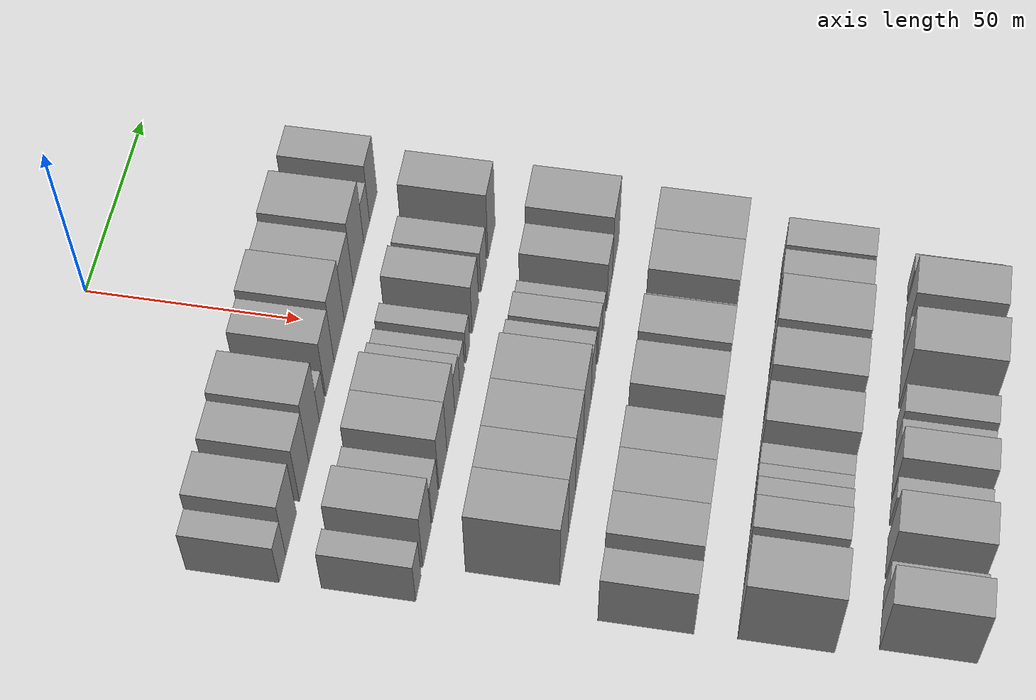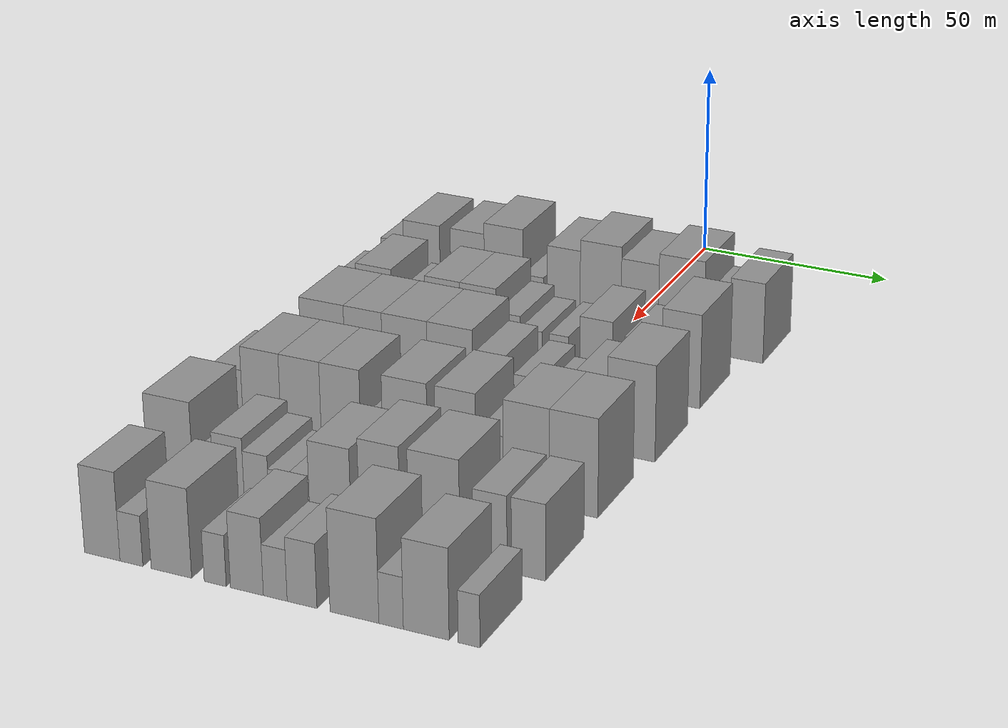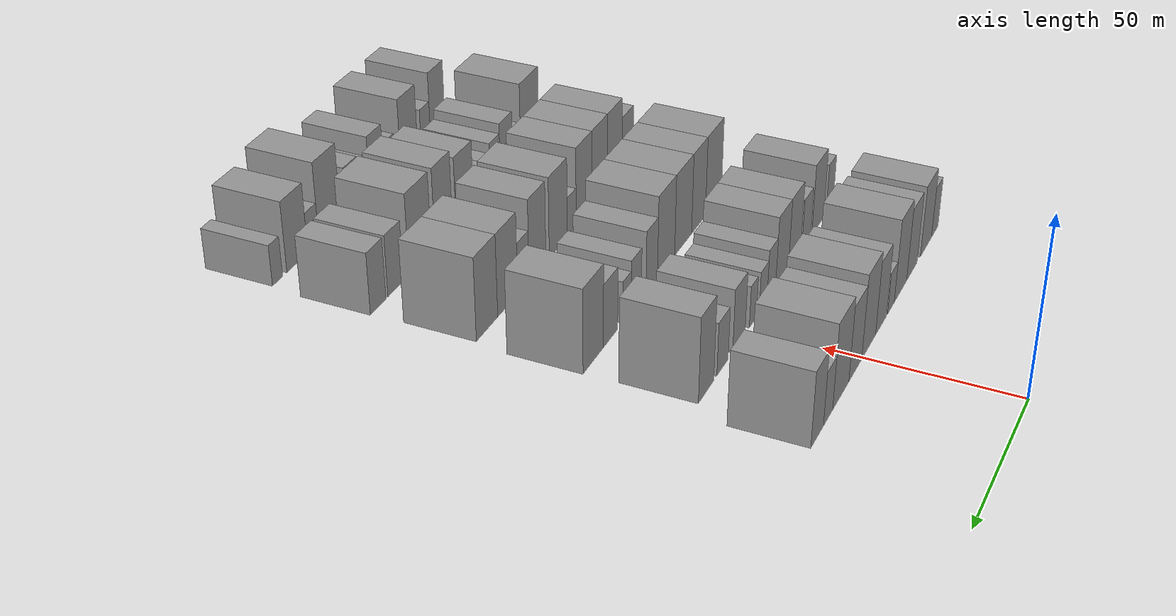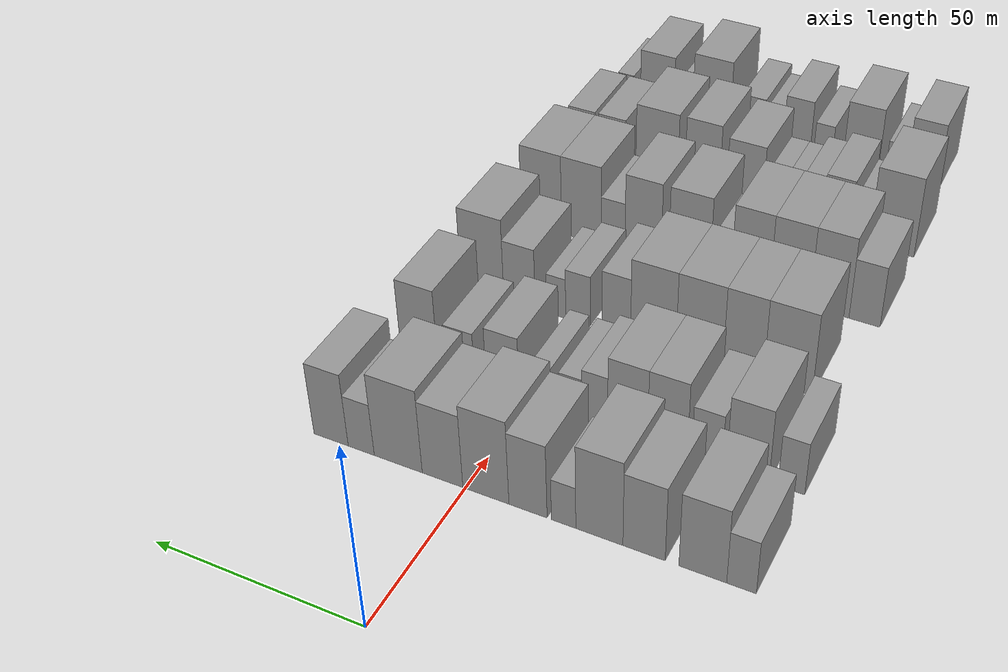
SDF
<sdf version="1.6">
 <world name="default">
  <model name="building_51">
   <static>1</static>
   <pose>50.0000 -62.4116 0 0.000000 0.000000 0.000000</pose>
   <link name="link">
    <pose>0 0 7.50 0 0 0</pose>
    <collision name="collision"><geometry><box><size>20.0000 6.3117 15.0000</size></box></geometry></collision>
    <visual name="visual">
     <cast_shadows>0</cast_shadows>
     <geometry><box><size>20.0000 6.3117 15.0000</size></box></geometry>
     <material>
      <script>
       <uri>model://grey_wall/materials/scripts</uri>
       <uri>model://grey_wall/materials/textures</uri>
       <name>vrc/grey_wall</name>
      </script>
     </material>
    </visual>
   </link>
  </model>
  <model name="building_52">
   <static>1</static>
   <pose>50.0000 -54.0903 0 0.000000 0.000000 0.000000</pose>
   <link name="link">
    <pose>0 0 10.50 0 0 0</pose>
    <collision name="collision"><geometry><box><size>20.0000 10.3308 21.0000</size></box></geometry></collision>
    <visual name="visual">
     <cast_shadows>0</cast_shadows>
     <geometry><box><size>20.0000 10.3308 21.0000</size></box></geometry>
     <material>
      <script>
       <uri>model://grey_wall/materials/scripts</uri>
       <uri>model://grey_wall/materials/textures</uri>
       <name>vrc/grey_wall</name>
      </script>
     </material>
    </visual>
   </link>
  </model>
  <model name="building_53">
   <static>1</static>
   <pose>50.0000 -41.2274 0 0.000000 0.000000 0.000000</pose>
   <link name="link">
    <pose>0 0 10.50 0 0 0</pose>
    <collision name="collision"><geometry><box><size>20.0000 9.3950 21.0000</size></box></geometry></collision>
    <visual name="visual">
     <cast_shadows>0</cast_shadows>
     <geometry><box><size>20.0000 9.3950 21.0000</size></box></geometry>
     <material>
      <script>
       <uri>model://grey_wall/materials/scripts</uri>
       <uri>model://grey_wall/materials/textures</uri>
       <name>vrc/grey_wall</name>
      </script>
     </material>
    </visual>
   </link>
  </model>
  <model name="building_54">
   <static>1</static>
   <pose>50.0000 -31.1987 0 0.000000 0.000000 0.000000</pose>
   <link name="link">
    <pose>0 0 12.00 0 0 0</pose>
    <collision name="collision"><geometry><box><size>20.0000 10.6625 24.0000</size></box></geometry></collision>
    <visual name="visual">
     <cast_shadows>0</cast_shadows>
     <geometry><box><size>20.0000 10.6625 24.0000</size></box></geometry>
     <material>
      <script>
       <uri>model://grey_wall/materials/scripts</uri>
       <uri>model://grey_wall/materials/textures</uri>
       <name>vrc/grey_wall</name>
      </script>
     </material>
    </visual>
   </link>
  </model>
  <model name="building_55">
   <static>1</static>
   <pose>50.0000 -23.0566 0 0.000000 0.000000 0.000000</pose>
   <link name="link">
    <pose>0 0 6.00 0 0 0</pose>
    <collision name="collision"><geometry><box><size>20.0000 5.6216 12.0000</size></box></geometry></collision>
    <visual name="visual">
     <cast_shadows>0</cast_shadows>
     <geometry><box><size>20.0000 5.6216 12.0000</size></box></geometry>
     <material>
      <script>
       <uri>model://grey_wall/materials/scripts</uri>
       <uri>model://grey_wall/materials/textures</uri>
       <name>vrc/grey_wall</name>
      </script>
     </material>
    </visual>
   </link>
  </model>
  <model name="building_56">
   <static>1</static>
   <pose>50.0000 -14.7755 0 0.000000 0.000000 0.000000</pose>
   <link name="link">
    <pose>0 0 10.50 0 0 0</pose>
    <collision name="collision"><geometry><box><size>20.0000 8.9406 21.0000</size></box></geometry></collision>
    <visual name="visual">
     <cast_shadows>0</cast_shadows>
     <geometry><box><size>20.0000 8.9406 21.0000</size></box></geometry>
     <material>
      <script>
       <uri>model://grey_wall/materials/scripts</uri>
       <uri>model://grey_wall/materials/textures</uri>
       <name>vrc/grey_wall</name>
      </script>
     </material>
    </visual>
   </link>
  </model>
  <model name="building_57">
   <static>1</static>
   <pose>50.0000 -4.7983 0 0.000000 0.000000 0.000000</pose>
   <link name="link">
    <pose>0 0 12.00 0 0 0</pose>
    <collision name="collision"><geometry><box><size>20.0000 11.0137 24.0000</size></box></geometry></collision>
    <visual name="visual">
     <cast_shadows>0</cast_shadows>
     <geometry><box><size>20.0000 11.0137 24.0000</size></box></geometry>
     <material>
      <script>
       <uri>model://grey_wall/materials/scripts</uri>
       <uri>model://grey_wall/materials/textures</uri>
       <name>vrc/grey_wall</name>
      </script>
     </material>
    </visual>
   </link>
  </model>
  <model name="building_58">
   <static>1</static>
   <pose>50.0000 5.6625 0 0.000000 0.000000 0.000000</pose>
   <link name="link">
    <pose>0 0 10.50 0 0 0</pose>
    <collision name="collision"><geometry><box><size>20.0000 9.9080 21.0000</size></box></geometry></collision>
    <visual name="visual">
     <cast_shadows>0</cast_shadows>
     <geometry><box><size>20.0000 9.9080 21.0000</size></box></geometry>
     <material>
      <script>
       <uri>model://grey_wall/materials/scripts</uri>
       <uri>model://grey_wall/materials/textures</uri>
       <name>vrc/grey_wall</name>
      </script>
     </material>
    </visual>
   </link>
  </model>
  <model name="building_59">
   <static>1</static>
   <pose>50.0000 16.5952 0 0.000000 0.000000 0.000000</pose>
   <link name="link">
    <pose>0 0 12.00 0 0 0</pose>
    <collision name="collision"><geometry><box><size>20.0000 11.9573 24.0000</size></box></geometry></collision>
    <visual name="visual">
     <cast_shadows>0</cast_shadows>
     <geometry><box><size>20.0000 11.9573 24.0000</size></box></geometry>
     <material>
      <script>
       <uri>model://grey_wall/materials/scripts</uri>
       <uri>model://grey_wall/materials/textures</uri>
       <name>vrc/grey_wall</name>
      </script>
     </material>
    </visual>
   </link>
  </model>
  <model name="building_60">
   <static>1</static>
   <pose>50.0000 25.8689 0 0.000000 0.000000 0.000000</pose>
   <link name="link">
    <pose>0 0 7.50 0 0 0</pose>
    <collision name="collision"><geometry><box><size>20.0000 6.5901 15.0000</size></box></geometry></collision>
    <visual name="visual">
     <cast_shadows>0</cast_shadows>
     <geometry><box><size>20.0000 6.5901 15.0000</size></box></geometry>
     <material>
      <script>
       <uri>model://grey_wall/materials/scripts</uri>
       <uri>model://grey_wall/materials/textures</uri>
       <name>vrc/grey_wall</name>
      </script>
     </material>
    </visual>
   </link>
  </model>
  <model name="building_61">
   <static>1</static>
   <pose>50.0000 33.5676 0 0.000000 0.000000 0.000000</pose>
   <link name="link">
    <pose>0 0 10.50 0 0 0</pose>
    <collision name="collision"><geometry><box><size>20.0000 8.8073 21.0000</size></box></geometry></collision>
    <visual name="visual">
     <cast_shadows>0</cast_shadows>
     <geometry><box><size>20.0000 8.8073 21.0000</size></box></geometry>
     <material>
      <script>
       <uri>model://grey_wall/materials/scripts</uri>
       <uri>model://grey_wall/materials/textures</uri>
       <name>vrc/grey_wall</name>
      </script>
     </material>
    </visual>
   </link>
  </model>
  <model name="building_163">
   <static>1</static>
   <pose>79.0000 -62.3945 0 0.000000 0.000000 0.000000</pose>
   <link name="link">
    <pose>0 0 7.50 0 0 0</pose>
    <collision name="collision"><geometry><box><size>20.0000 6.0186 15.0000</size></box></geometry></collision>
    <visual name="visual">
     <cast_shadows>0</cast_shadows>
     <geometry><box><size>20.0000 6.0186 15.0000</size></box></geometry>
     <material>
      <script>
       <uri>model://grey_wall/materials/scripts</uri>
       <uri>model://grey_wall/materials/textures</uri>
       <name>vrc/grey_wall</name>
      </script>
     </material>
    </visual>
   </link>
  </model>
  <model name="building_164">
   <static>1</static>
   <pose>79.0000 -52.5461 0 0.000000 0.000000 0.000000</pose>
   <link name="link">
    <pose>0 0 10.50 0 0 0</pose>
    <collision name="collision"><geometry><box><size>20.0000 9.6782 21.0000</size></box></geometry></collision>
    <visual name="visual">
     <cast_shadows>0</cast_shadows>
     <geometry><box><size>20.0000 9.6782 21.0000</size></box></geometry>
     <material>
      <script>
       <uri>model://grey_wall/materials/scripts</uri>
       <uri>model://grey_wall/materials/textures</uri>
       <name>vrc/grey_wall</name>
      </script>
     </material>
    </visual>
   </link>
  </model>
  <model name="building_165">
   <static>1</static>
   <pose>79.0000 -43.1634 0 0.000000 0.000000 0.000000</pose>
   <link name="link">
    <pose>0 0 7.50 0 0 0</pose>
    <collision name="collision"><geometry><box><size>20.0000 7.0872 15.0000</size></box></geometry></collision>
    <visual name="visual">
     <cast_shadows>0</cast_shadows>
     <geometry><box><size>20.0000 7.0872 15.0000</size></box></geometry>
     <material>
      <script>
       <uri>model://grey_wall/materials/scripts</uri>
       <uri>model://grey_wall/materials/textures</uri>
       <name>vrc/grey_wall</name>
      </script>
     </material>
    </visual>
   </link>
  </model>
  <model name="building_166">
   <static>1</static>
   <pose>79.0000 -33.9154 0 0.000000 0.000000 0.000000</pose>
   <link name="link">
    <pose>0 0 10.50 0 0 0</pose>
    <collision name="collision"><geometry><box><size>20.0000 9.4089 21.0000</size></box></geometry></collision>
    <visual name="visual">
     <cast_shadows>0</cast_shadows>
     <geometry><box><size>20.0000 9.4089 21.0000</size></box></geometry>
     <material>
      <script>
       <uri>model://grey_wall/materials/scripts</uri>
       <uri>model://grey_wall/materials/textures</uri>
       <name>vrc/grey_wall</name>
      </script>
     </material>
    </visual>
   </link>
  </model>
  <model name="building_167">
   <static>1</static>
   <pose>79.0000 -24.3999 0 0.000000 0.000000 0.000000</pose>
   <link name="link">
    <pose>0 0 10.50 0 0 0</pose>
    <collision name="collision"><geometry><box><size>20.0000 9.6222 21.0000</size></box></geometry></collision>
    <visual name="visual">
     <cast_shadows>0</cast_shadows>
     <geometry><box><size>20.0000 9.6222 21.0000</size></box></geometry>
     <material>
      <script>
       <uri>model://grey_wall/materials/scripts</uri>
       <uri>model://grey_wall/materials/textures</uri>
       <name>vrc/grey_wall</name>
      </script>
     </material>
    </visual>
   </link>
  </model>
  <model name="building_168">
   <static>1</static>
   <pose>79.0000 -16.4338 0 0.000000 0.000000 0.000000</pose>
   <link name="link">
    <pose>0 0 7.50 0 0 0</pose>
    <collision name="collision"><geometry><box><size>20.0000 6.3099 15.0000</size></box></geometry></collision>
    <visual name="visual">
     <cast_shadows>0</cast_shadows>
     <geometry><box><size>20.0000 6.3099 15.0000</size></box></geometry>
     <material>
      <script>
       <uri>model://grey_wall/materials/scripts</uri>
       <uri>model://grey_wall/materials/textures</uri>
       <name>vrc/grey_wall</name>
      </script>
     </material>
    </visual>
   </link>
  </model>
  <model name="building_169">
   <static>1</static>
   <pose>79.0000 -10.4634 0 0.000000 0.000000 0.000000</pose>
   <link name="link">
    <pose>0 0 6.00 0 0 0</pose>
    <collision name="collision"><geometry><box><size>20.0000 5.6307 12.0000</size></box></geometry></collision>
    <visual name="visual">
     <cast_shadows>0</cast_shadows>
     <geometry><box><size>20.0000 5.6307 12.0000</size></box></geometry>
     <material>
      <script>
       <uri>model://grey_wall/materials/scripts</uri>
       <uri>model://grey_wall/materials/textures</uri>
       <name>vrc/grey_wall</name>
      </script>
     </material>
    </visual>
   </link>
  </model>
  <model name="building_170">
   <static>1</static>
   <pose>79.0000 -3.1844 0 0.000000 0.000000 0.000000</pose>
   <link name="link">
    <pose>0 0 6.00 0 0 0</pose>
    <collision name="collision"><geometry><box><size>20.0000 4.9274 12.0000</size></box></geometry></collision>
    <visual name="visual">
     <cast_shadows>0</cast_shadows>
     <geometry><box><size>20.0000 4.9274 12.0000</size></box></geometry>
     <material>
      <script>
       <uri>model://grey_wall/materials/scripts</uri>
       <uri>model://grey_wall/materials/textures</uri>
       <name>vrc/grey_wall</name>
      </script>
     </material>
    </visual>
   </link>
  </model>
  <model name="building_171">
   <static>1</static>
   <pose>79.0000 6.4791 0 0.000000 0.000000 0.000000</pose>
   <link name="link">
    <pose>0 0 9.00 0 0 0</pose>
    <collision name="collision"><geometry><box><size>20.0000 8.3995 18.0000</size></box></geometry></collision>
    <visual name="visual">
     <cast_shadows>0</cast_shadows>
     <geometry><box><size>20.0000 8.3995 18.0000</size></box></geometry>
     <material>
      <script>
       <uri>model://grey_wall/materials/scripts</uri>
       <uri>model://grey_wall/materials/textures</uri>
       <name>vrc/grey_wall</name>
      </script>
     </material>
    </visual>
   </link>
  </model>
  <model name="building_172">
   <static>1</static>
   <pose>79.0000 17.4072 0 0.000000 0.000000 0.000000</pose>
   <link name="link">
    <pose>0 0 7.50 0 0 0</pose>
    <collision name="collision"><geometry><box><size>20.0000 7.4567 15.0000</size></box></geometry></collision>
    <visual name="visual">
     <cast_shadows>0</cast_shadows>
     <geometry><box><size>20.0000 7.4567 15.0000</size></box></geometry>
     <material>
      <script>
       <uri>model://grey_wall/materials/scripts</uri>
       <uri>model://grey_wall/materials/textures</uri>
       <name>vrc/grey_wall</name>
      </script>
     </material>
    </visual>
   </link>
  </model>
  <model name="building_173">
   <static>1</static>
   <pose>79.0000 28.0051 0 0.000000 0.000000 0.000000</pose>
   <link name="link">
    <pose>0 0 12.00 0 0 0</pose>
    <collision name="collision"><geometry><box><size>20.0000 9.7390 24.0000</size></box></geometry></collision>
    <visual name="visual">
     <cast_shadows>0</cast_shadows>
     <geometry><box><size>20.0000 9.7390 24.0000</size></box></geometry>
     <material>
      <script>
       <uri>model://grey_wall/materials/scripts</uri>
       <uri>model://grey_wall/materials/textures</uri>
       <name>vrc/grey_wall</name>
      </script>
     </material>
    </visual>
   </link>
  </model>
  <model name="building_278">
   <static>1</static>
   <pose>108.0000 -51.0551 0 0.000000 0.000000 0.000000</pose>
   <link name="link">
    <pose>0 0 12.00 0 0 0</pose>
    <collision name="collision"><geometry><box><size>20.0000 11.7241 24.0000</size></box></geometry></collision>
    <visual name="visual">
     <cast_shadows>0</cast_shadows>
     <geometry><box><size>20.0000 11.7241 24.0000</size></box></geometry>
     <material>
      <script>
       <uri>model://grey_wall/materials/scripts</uri>
       <uri>model://grey_wall/materials/textures</uri>
       <name>vrc/grey_wall</name>
      </script>
     </material>
    </visual>
   </link>
  </model>
  <model name="building_279">
   <static>1</static>
   <pose>108.0000 -40.2306 0 0.000000 0.000000 0.000000</pose>
   <link name="link">
    <pose>0 0 12.00 0 0 0</pose>
    <collision name="collision"><geometry><box><size>20.0000 9.9248 24.0000</size></box></geometry></collision>
    <visual name="visual">
     <cast_shadows>0</cast_shadows>
     <geometry><box><size>20.0000 9.9248 24.0000</size></box></geometry>
     <material>
      <script>
       <uri>model://grey_wall/materials/scripts</uri>
       <uri>model://grey_wall/materials/textures</uri>
       <name>vrc/grey_wall</name>
      </script>
     </material>
    </visual>
   </link>
  </model>
  <model name="building_280">
   <static>1</static>
   <pose>108.0000 -29.4153 0 0.000000 0.000000 0.000000</pose>
   <link name="link">
    <pose>0 0 12.00 0 0 0</pose>
    <collision name="collision"><geometry><box><size>20.0000 11.7057 24.0000</size></box></geometry></collision>
    <visual name="visual">
     <cast_shadows>0</cast_shadows>
     <geometry><box><size>20.0000 11.7057 24.0000</size></box></geometry>
     <material>
      <script>
       <uri>model://grey_wall/materials/scripts</uri>
       <uri>model://grey_wall/materials/textures</uri>
       <name>vrc/grey_wall</name>
      </script>
     </material>
    </visual>
   </link>
  </model>
  <model name="building_281">
   <static>1</static>
   <pose>108.0000 -17.7863 0 0.000000 0.000000 0.000000</pose>
   <link name="link">
    <pose>0 0 12.00 0 0 0</pose>
    <collision name="collision"><geometry><box><size>20.0000 11.5524 24.0000</size></box></geometry></collision>
    <visual name="visual">
     <cast_shadows>0</cast_shadows>
     <geometry><box><size>20.0000 11.5524 24.0000</size></box></geometry>
     <material>
      <script>
       <uri>model://grey_wall/materials/scripts</uri>
       <uri>model://grey_wall/materials/textures</uri>
       <name>vrc/grey_wall</name>
      </script>
     </material>
    </visual>
   </link>
  </model>
  <model name="building_282">
   <static>1</static>
   <pose>108.0000 -8.2903 0 0.000000 0.000000 0.000000</pose>
   <link name="link">
    <pose>0 0 9.00 0 0 0</pose>
    <collision name="collision"><geometry><box><size>20.0000 7.4397 18.0000</size></box></geometry></collision>
    <visual name="visual">
     <cast_shadows>0</cast_shadows>
     <geometry><box><size>20.0000 7.4397 18.0000</size></box></geometry>
     <material>
      <script>
       <uri>model://grey_wall/materials/scripts</uri>
       <uri>model://grey_wall/materials/textures</uri>
       <name>vrc/grey_wall</name>
      </script>
     </material>
    </visual>
   </link>
  </model>
  <model name="building_283">
   <static>1</static>
   <pose>108.0000 1.6561 0 0.000000 0.000000 0.000000</pose>
   <link name="link">
    <pose>0 0 7.50 0 0 0</pose>
    <collision name="collision"><geometry><box><size>20.0000 6.4531 15.0000</size></box></geometry></collision>
    <visual name="visual">
     <cast_shadows>0</cast_shadows>
     <geometry><box><size>20.0000 6.4531 15.0000</size></box></geometry>
     <material>
      <script>
       <uri>model://grey_wall/materials/scripts</uri>
       <uri>model://grey_wall/materials/textures</uri>
       <name>vrc/grey_wall</name>
      </script>
     </material>
    </visual>
   </link>
  </model>
  <model name="building_284">
   <static>1</static>
   <pose>108.0000 7.4560 0 0.000000 0.000000 0.000000</pose>
   <link name="link">
    <pose>0 0 6.00 0 0 0</pose>
    <collision name="collision"><geometry><box><size>20.0000 5.1467 12.0000</size></box></geometry></collision>
    <visual name="visual">
     <cast_shadows>0</cast_shadows>
     <geometry><box><size>20.0000 5.1467 12.0000</size></box></geometry>
     <material>
      <script>
       <uri>model://grey_wall/materials/scripts</uri>
       <uri>model://grey_wall/materials/textures</uri>
       <name>vrc/grey_wall</name>
      </script>
     </material>
    </visual>
   </link>
  </model>
  <model name="building_285">
   <static>1</static>
   <pose>108.0000 17.2810 0 0.000000 0.000000 0.000000</pose>
   <link name="link">
    <pose>0 0 9.00 0 0 0</pose>
    <collision name="collision"><geometry><box><size>20.0000 8.5032 18.0000</size></box></geometry></collision>
    <visual name="visual">
     <cast_shadows>0</cast_shadows>
     <geometry><box><size>20.0000 8.5032 18.0000</size></box></geometry>
     <material>
      <script>
       <uri>model://grey_wall/materials/scripts</uri>
       <uri>model://grey_wall/materials/textures</uri>
       <name>vrc/grey_wall</name>
      </script>
     </material>
    </visual>
   </link>
  </model>
  <model name="building_286">
   <static>1</static>
   <pose>108.0000 27.4141 0 0.000000 0.000000 0.000000</pose>
   <link name="link">
    <pose>0 0 12.00 0 0 0</pose>
    <collision name="collision"><geometry><box><size>20.0000 11.7630 24.0000</size></box></geometry></collision>
    <visual name="visual">
     <cast_shadows>0</cast_shadows>
     <geometry><box><size>20.0000 11.7630 24.0000</size></box></geometry>
     <material>
      <script>
       <uri>model://grey_wall/materials/scripts</uri>
       <uri>model://grey_wall/materials/textures</uri>
       <name>vrc/grey_wall</name>
      </script>
     </material>
    </visual>
   </link>
  </model>
  <model name="building_385">
   <static>1</static>
   <pose>137.0000 -59.8821 0 0.000000 0.000000 0.000000</pose>
   <link name="link">
    <pose>0 0 9.00 0 0 0</pose>
    <collision name="collision"><geometry><box><size>20.0000 7.7068 18.0000</size></box></geometry></collision>
    <visual name="visual">
     <cast_shadows>0</cast_shadows>
     <geometry><box><size>20.0000 7.7068 18.0000</size></box></geometry>
     <material>
      <script>
       <uri>model://grey_wall/materials/scripts</uri>
       <uri>model://grey_wall/materials/textures</uri>
       <name>vrc/grey_wall</name>
      </script>
     </material>
    </visual>
   </link>
  </model>
  <model name="building_386">
   <static>1</static>
   <pose>137.0000 -51.0904 0 0.000000 0.000000 0.000000</pose>
   <link name="link">
    <pose>0 0 12.00 0 0 0</pose>
    <collision name="collision"><geometry><box><size>20.0000 9.8766 24.0000</size></box></geometry></collision>
    <visual name="visual">
     <cast_shadows>0</cast_shadows>
     <geometry><box><size>20.0000 9.8766 24.0000</size></box></geometry>
     <material>
      <script>
       <uri>model://grey_wall/materials/scripts</uri>
       <uri>model://grey_wall/materials/textures</uri>
       <name>vrc/grey_wall</name>
      </script>
     </material>
    </visual>
   </link>
  </model>
  <model name="building_387">
   <static>1</static>
   <pose>137.0000 -40.9889 0 0.000000 0.000000 0.000000</pose>
   <link name="link">
    <pose>0 0 12.00 0 0 0</pose>
    <collision name="collision"><geometry><box><size>20.0000 10.3264 24.0000</size></box></geometry></collision>
    <visual name="visual">
     <cast_shadows>0</cast_shadows>
     <geometry><box><size>20.0000 10.3264 24.0000</size></box></geometry>
     <material>
      <script>
       <uri>model://grey_wall/materials/scripts</uri>
       <uri>model://grey_wall/materials/textures</uri>
       <name>vrc/grey_wall</name>
      </script>
     </material>
    </visual>
   </link>
  </model>
  <model name="building_388">
   <static>1</static>
   <pose>137.0000 -30.7949 0 0.000000 0.000000 0.000000</pose>
   <link name="link">
    <pose>0 0 12.00 0 0 0</pose>
    <collision name="collision"><geometry><box><size>20.0000 10.0615 24.0000</size></box></geometry></collision>
    <visual name="visual">
     <cast_shadows>0</cast_shadows>
     <geometry><box><size>20.0000 10.0615 24.0000</size></box></geometry>
     <material>
      <script>
       <uri>model://grey_wall/materials/scripts</uri>
       <uri>model://grey_wall/materials/textures</uri>
       <name>vrc/grey_wall</name>
      </script>
     </material>
    </visual>
   </link>
  </model>
  <model name="building_389">
   <static>1</static>
   <pose>137.0000 -23.0098 0 0.000000 0.000000 0.000000</pose>
   <link name="link">
    <pose>0 0 6.00 0 0 0</pose>
    <collision name="collision"><geometry><box><size>20.0000 5.5087 12.0000</size></box></geometry></collision>
    <visual name="visual">
     <cast_shadows>0</cast_shadows>
     <geometry><box><size>20.0000 5.5087 12.0000</size></box></geometry>
     <material>
      <script>
       <uri>model://grey_wall/materials/scripts</uri>
       <uri>model://grey_wall/materials/textures</uri>
       <name>vrc/grey_wall</name>
      </script>
     </material>
    </visual>
   </link>
  </model>
  <model name="building_390">
   <static>1</static>
   <pose>137.0000 -14.7301 0 0.000000 0.000000 0.000000</pose>
   <link name="link">
    <pose>0 0 12.00 0 0 0</pose>
    <collision name="collision"><geometry><box><size>20.0000 11.0506 24.0000</size></box></geometry></collision>
    <visual name="visual">
     <cast_shadows>0</cast_shadows>
     <geometry><box><size>20.0000 11.0506 24.0000</size></box></geometry>
     <material>
      <script>
       <uri>model://grey_wall/materials/scripts</uri>
       <uri>model://grey_wall/materials/textures</uri>
       <name>vrc/grey_wall</name>
      </script>
     </material>
    </visual>
   </link>
  </model>
  <model name="building_391">
   <static>1</static>
   <pose>137.0000 -2.2840 0 0.000000 0.000000 0.000000</pose>
   <link name="link">
    <pose>0 0 12.00 0 0 0</pose>
    <collision name="collision"><geometry><box><size>20.0000 9.8416 24.0000</size></box></geometry></collision>
    <visual name="visual">
     <cast_shadows>0</cast_shadows>
     <geometry><box><size>20.0000 9.8416 24.0000</size></box></geometry>
     <material>
      <script>
       <uri>model://grey_wall/materials/scripts</uri>
       <uri>model://grey_wall/materials/textures</uri>
       <name>vrc/grey_wall</name>
      </script>
     </material>
    </visual>
   </link>
  </model>
  <model name="building_392">
   <static>1</static>
   <pose>137.0000 5.9213 0 0.000000 0.000000 0.000000</pose>
   <link name="link">
    <pose>0 0 7.50 0 0 0</pose>
    <collision name="collision"><geometry><box><size>20.0000 6.5691 15.0000</size></box></geometry></collision>
    <visual name="visual">
     <cast_shadows>0</cast_shadows>
     <geometry><box><size>20.0000 6.5691 15.0000</size></box></geometry>
     <material>
      <script>
       <uri>model://grey_wall/materials/scripts</uri>
       <uri>model://grey_wall/materials/textures</uri>
       <name>vrc/grey_wall</name>
      </script>
     </material>
    </visual>
   </link>
  </model>
  <model name="building_393">
   <static>1</static>
   <pose>137.0000 14.7529 0 0.000000 0.000000 0.000000</pose>
   <link name="link">
    <pose>0 0 12.00 0 0 0</pose>
    <collision name="collision"><geometry><box><size>20.0000 11.0941 24.0000</size></box></geometry></collision>
    <visual name="visual">
     <cast_shadows>0</cast_shadows>
     <geometry><box><size>20.0000 11.0941 24.0000</size></box></geometry>
     <material>
      <script>
       <uri>model://grey_wall/materials/scripts</uri>
       <uri>model://grey_wall/materials/textures</uri>
       <name>vrc/grey_wall</name>
      </script>
     </material>
    </visual>
   </link>
  </model>
  <model name="building_394">
   <static>1</static>
   <pose>137.0000 26.0189 0 0.000000 0.000000 0.000000</pose>
   <link name="link">
    <pose>0 0 12.00 0 0 0</pose>
    <collision name="collision"><geometry><box><size>20.0000 11.4378 24.0000</size></box></geometry></collision>
    <visual name="visual">
     <cast_shadows>0</cast_shadows>
     <geometry><box><size>20.0000 11.4378 24.0000</size></box></geometry>
     <material>
      <script>
       <uri>model://grey_wall/materials/scripts</uri>
       <uri>model://grey_wall/materials/textures</uri>
       <name>vrc/grey_wall</name>
      </script>
     </material>
    </visual>
   </link>
  </model>
  <model name="building_498">
   <static>1</static>
   <pose>166.0000 -57.5753 0 0.000000 0.000000 0.000000</pose>
   <link name="link">
    <pose>0 0 12.00 0 0 0</pose>
    <collision name="collision"><geometry><box><size>20.0000 11.6650 24.0000</size></box></geometry></collision>
    <visual name="visual">
     <cast_shadows>0</cast_shadows>
     <geometry><box><size>20.0000 11.6650 24.0000</size></box></geometry>
     <material>
      <script>
       <uri>model://grey_wall/materials/scripts</uri>
       <uri>model://grey_wall/materials/textures</uri>
       <name>vrc/grey_wall</name>
      </script>
     </material>
    </visual>
   </link>
  </model>
  <model name="building_499">
   <static>1</static>
   <pose>166.0000 -49.2189 0 0.000000 0.000000 0.000000</pose>
   <link name="link">
    <pose>0 0 6.00 0 0 0</pose>
    <collision name="collision"><geometry><box><size>20.0000 5.0479 12.0000</size></box></geometry></collision>
    <visual name="visual">
     <cast_shadows>0</cast_shadows>
     <geometry><box><size>20.0000 5.0479 12.0000</size></box></geometry>
     <material>
      <script>
       <uri>model://grey_wall/materials/scripts</uri>
       <uri>model://grey_wall/materials/textures</uri>
       <name>vrc/grey_wall</name>
      </script>
     </material>
    </visual>
   </link>
  </model>
  <model name="building_500">
   <static>1</static>
   <pose>166.0000 -42.8873 0 0.000000 0.000000 0.000000</pose>
   <link name="link">
    <pose>0 0 9.00 0 0 0</pose>
    <collision name="collision"><geometry><box><size>20.0000 7.6154 18.0000</size></box></geometry></collision>
    <visual name="visual">
     <cast_shadows>0</cast_shadows>
     <geometry><box><size>20.0000 7.6154 18.0000</size></box></geometry>
     <material>
      <script>
       <uri>model://grey_wall/materials/scripts</uri>
       <uri>model://grey_wall/materials/textures</uri>
       <name>vrc/grey_wall</name>
      </script>
     </material>
    </visual>
   </link>
  </model>
  <model name="building_501">
   <static>1</static>
   <pose>166.0000 -36.0193 0 0.000000 0.000000 0.000000</pose>
   <link name="link">
    <pose>0 0 7.50 0 0 0</pose>
    <collision name="collision"><geometry><box><size>20.0000 6.1205 15.0000</size></box></geometry></collision>
    <visual name="visual">
     <cast_shadows>0</cast_shadows>
     <geometry><box><size>20.0000 6.1205 15.0000</size></box></geometry>
     <material>
      <script>
       <uri>model://grey_wall/materials/scripts</uri>
       <uri>model://grey_wall/materials/textures</uri>
       <name>vrc/grey_wall</name>
      </script>
     </material>
    </visual>
   </link>
  </model>
  <model name="building_502">
   <static>1</static>
   <pose>166.0000 -30.4829 0 0.000000 0.000000 0.000000</pose>
   <link name="link">
    <pose>0 0 6.00 0 0 0</pose>
    <collision name="collision"><geometry><box><size>20.0000 4.9523 12.0000</size></box></geometry></collision>
    <visual name="visual">
     <cast_shadows>0</cast_shadows>
     <geometry><box><size>20.0000 4.9523 12.0000</size></box></geometry>
     <material>
      <script>
       <uri>model://grey_wall/materials/scripts</uri>
       <uri>model://grey_wall/materials/textures</uri>
       <name>vrc/grey_wall</name>
      </script>
     </material>
    </visual>
   </link>
  </model>
  <model name="building_503">
   <static>1</static>
   <pose>166.0000 -25.4910 0 0.000000 0.000000 0.000000</pose>
   <link name="link">
    <pose>0 0 6.00 0 0 0</pose>
    <collision name="collision"><geometry><box><size>20.0000 5.0314 12.0000</size></box></geometry></collision>
    <visual name="visual">
     <cast_shadows>0</cast_shadows>
     <geometry><box><size>20.0000 5.0314 12.0000</size></box></geometry>
     <material>
      <script>
       <uri>model://grey_wall/materials/scripts</uri>
       <uri>model://grey_wall/materials/textures</uri>
       <name>vrc/grey_wall</name>
      </script>
     </material>
    </visual>
   </link>
  </model>
  <model name="building_504">
   <static>1</static>
   <pose>166.0000 -17.9669 0 0.000000 0.000000 0.000000</pose>
   <link name="link">
    <pose>0 0 10.50 0 0 0</pose>
    <collision name="collision"><geometry><box><size>20.0000 10.0170 21.0000</size></box></geometry></collision>
    <visual name="visual">
     <cast_shadows>0</cast_shadows>
     <geometry><box><size>20.0000 10.0170 21.0000</size></box></geometry>
     <material>
      <script>
       <uri>model://grey_wall/materials/scripts</uri>
       <uri>model://grey_wall/materials/textures</uri>
       <name>vrc/grey_wall</name>
      </script>
     </material>
    </visual>
   </link>
  </model>
  <model name="building_505">
   <static>1</static>
   <pose>166.0000 -6.1053 0 0.000000 0.000000 0.000000</pose>
   <link name="link">
    <pose>0 0 12.00 0 0 0</pose>
    <collision name="collision"><geometry><box><size>20.0000 9.7061 24.0000</size></box></geometry></collision>
    <visual name="visual">
     <cast_shadows>0</cast_shadows>
     <geometry><box><size>20.0000 9.7061 24.0000</size></box></geometry>
     <material>
      <script>
       <uri>model://grey_wall/materials/scripts</uri>
       <uri>model://grey_wall/materials/textures</uri>
       <name>vrc/grey_wall</name>
      </script>
     </material>
    </visual>
   </link>
  </model>
  <model name="building_506">
   <static>1</static>
   <pose>166.0000 6.7424 0 0.000000 0.000000 0.000000</pose>
   <link name="link">
    <pose>0 0 12.00 0 0 0</pose>
    <collision name="collision"><geometry><box><size>20.0000 11.9894 24.0000</size></box></geometry></collision>
    <visual name="visual">
     <cast_shadows>0</cast_shadows>
     <geometry><box><size>20.0000 11.9894 24.0000</size></box></geometry>
     <material>
      <script>
       <uri>model://grey_wall/materials/scripts</uri>
       <uri>model://grey_wall/materials/textures</uri>
       <name>vrc/grey_wall</name>
      </script>
     </material>
    </visual>
   </link>
  </model>
  <model name="building_507">
   <static>1</static>
   <pose>166.0000 19.6723 0 0.000000 0.000000 0.000000</pose>
   <link name="link">
    <pose>0 0 9.00 0 0 0</pose>
    <collision name="collision"><geometry><box><size>20.0000 7.8706 18.0000</size></box></geometry></collision>
    <visual name="visual">
     <cast_shadows>0</cast_shadows>
     <geometry><box><size>20.0000 7.8706 18.0000</size></box></geometry>
     <material>
      <script>
       <uri>model://grey_wall/materials/scripts</uri>
       <uri>model://grey_wall/materials/textures</uri>
       <name>vrc/grey_wall</name>
      </script>
     </material>
    </visual>
   </link>
  </model>
  <model name="building_508">
   <static>1</static>
   <pose>166.0000 28.4803 0 0.000000 0.000000 0.000000</pose>
   <link name="link">
    <pose>0 0 9.00 0 0 0</pose>
    <collision name="collision"><geometry><box><size>20.0000 7.7455 18.0000</size></box></geometry></collision>
    <visual name="visual">
     <cast_shadows>0</cast_shadows>
     <geometry><box><size>20.0000 7.7455 18.0000</size></box></geometry>
     <material>
      <script>
       <uri>model://grey_wall/materials/scripts</uri>
       <uri>model://grey_wall/materials/textures</uri>
       <name>vrc/grey_wall</name>
      </script>
     </material>
    </visual>
   </link>
  </model>
  <model name="building_605">
   <static>1</static>
   <pose>195.0000 -56.8257 0 0.000000 0.000000 0.000000</pose>
   <link name="link">
    <pose>0 0 10.50 0 0 0</pose>
    <collision name="collision"><geometry><box><size>20.0000 8.7686 21.0000</size></box></geometry></collision>
    <visual name="visual">
     <cast_shadows>0</cast_shadows>
     <geometry><box><size>20.0000 8.7686 21.0000</size></box></geometry>
     <material>
      <script>
       <uri>model://grey_wall/materials/scripts</uri>
       <uri>model://grey_wall/materials/textures</uri>
       <name>vrc/grey_wall</name>
      </script>
     </material>
    </visual>
   </link>
  </model>
  <model name="building_606">
   <static>1</static>
   <pose>195.0000 -49.6338 0 0.000000 0.000000 0.000000</pose>
   <link name="link">
    <pose>0 0 6.00 0 0 0</pose>
    <collision name="collision"><geometry><box><size>20.0000 5.6152 12.0000</size></box></geometry></collision>
    <visual name="visual">
     <cast_shadows>0</cast_shadows>
     <geometry><box><size>20.0000 5.6152 12.0000</size></box></geometry>
     <material>
      <script>
       <uri>model://grey_wall/materials/scripts</uri>
       <uri>model://grey_wall/materials/textures</uri>
       <name>vrc/grey_wall</name>
      </script>
     </material>
    </visual>
   </link>
  </model>
  <model name="building_607">
   <static>1</static>
   <pose>195.0000 -39.9279 0 0.000000 0.000000 0.000000</pose>
   <link name="link">
    <pose>0 0 10.50 0 0 0</pose>
    <collision name="collision"><geometry><box><size>20.0000 9.7967 21.0000</size></box></geometry></collision>
    <visual name="visual">
     <cast_shadows>0</cast_shadows>
     <geometry><box><size>20.0000 9.7967 21.0000</size></box></geometry>
     <material>
      <script>
       <uri>model://grey_wall/materials/scripts</uri>
       <uri>model://grey_wall/materials/textures</uri>
       <name>vrc/grey_wall</name>
      </script>
     </material>
    </visual>
   </link>
  </model>
  <model name="building_608">
   <static>1</static>
   <pose>195.0000 -29.3974 0 0.000000 0.000000 0.000000</pose>
   <link name="link">
    <pose>0 0 6.00 0 0 0</pose>
    <collision name="collision"><geometry><box><size>20.0000 5.2644 12.0000</size></box></geometry></collision>
    <visual name="visual">
     <cast_shadows>0</cast_shadows>
     <geometry><box><size>20.0000 5.2644 12.0000</size></box></geometry>
     <material>
      <script>
       <uri>model://grey_wall/materials/scripts</uri>
       <uri>model://grey_wall/materials/textures</uri>
       <name>vrc/grey_wall</name>
      </script>
     </material>
    </visual>
   </link>
  </model>
  <model name="building_609">
   <static>1</static>
   <pose>195.0000 -21.8839 0 0.000000 0.000000 0.000000</pose>
   <link name="link">
    <pose>0 0 9.00 0 0 0</pose>
    <collision name="collision"><geometry><box><size>20.0000 7.7624 18.0000</size></box></geometry></collision>
    <visual name="visual">
     <cast_shadows>0</cast_shadows>
     <geometry><box><size>20.0000 7.7624 18.0000</size></box></geometry>
     <material>
      <script>
       <uri>model://grey_wall/materials/scripts</uri>
       <uri>model://grey_wall/materials/textures</uri>
       <name>vrc/grey_wall</name>
      </script>
     </material>
    </visual>
   </link>
  </model>
  <model name="building_610">
   <static>1</static>
   <pose>195.0000 -15.2236 0 0.000000 0.000000 0.000000</pose>
   <link name="link">
    <pose>0 0 6.00 0 0 0</pose>
    <collision name="collision"><geometry><box><size>20.0000 5.5582 12.0000</size></box></geometry></collision>
    <visual name="visual">
     <cast_shadows>0</cast_shadows>
     <geometry><box><size>20.0000 5.5582 12.0000</size></box></geometry>
     <material>
      <script>
       <uri>model://grey_wall/materials/scripts</uri>
       <uri>model://grey_wall/materials/textures</uri>
       <name>vrc/grey_wall</name>
      </script>
     </material>
    </visual>
   </link>
  </model>
  <model name="building_611">
   <static>1</static>
   <pose>195.0000 -8.9839 0 0.000000 0.000000 0.000000</pose>
   <link name="link">
    <pose>0 0 7.50 0 0 0</pose>
    <collision name="collision"><geometry><box><size>20.0000 6.9213 15.0000</size></box></geometry></collision>
    <visual name="visual">
     <cast_shadows>0</cast_shadows>
     <geometry><box><size>20.0000 6.9213 15.0000</size></box></geometry>
     <material>
      <script>
       <uri>model://grey_wall/materials/scripts</uri>
       <uri>model://grey_wall/materials/textures</uri>
       <name>vrc/grey_wall</name>
      </script>
     </material>
    </visual>
   </link>
  </model>
  <model name="building_612">
   <static>1</static>
   <pose>195.0000 3.0519 0 0.000000 0.000000 0.000000</pose>
   <link name="link">
    <pose>0 0 12.00 0 0 0</pose>
    <collision name="collision"><geometry><box><size>20.0000 11.1505 24.0000</size></box></geometry></collision>
    <visual name="visual">
     <cast_shadows>0</cast_shadows>
     <geometry><box><size>20.0000 11.1505 24.0000</size></box></geometry>
     <material>
      <script>
       <uri>model://grey_wall/materials/scripts</uri>
       <uri>model://grey_wall/materials/textures</uri>
       <name>vrc/grey_wall</name>
      </script>
     </material>
    </visual>
   </link>
  </model>
  <model name="building_613">
   <static>1</static>
   <pose>195.0000 11.3844 0 0.000000 0.000000 0.000000</pose>
   <link name="link">
    <pose>0 0 6.00 0 0 0</pose>
    <collision name="collision"><geometry><box><size>20.0000 5.5144 12.0000</size></box></geometry></collision>
    <visual name="visual">
     <cast_shadows>0</cast_shadows>
     <geometry><box><size>20.0000 5.5144 12.0000</size></box></geometry>
     <material>
      <script>
       <uri>model://grey_wall/materials/scripts</uri>
       <uri>model://grey_wall/materials/textures</uri>
       <name>vrc/grey_wall</name>
      </script>
     </material>
    </visual>
   </link>
  </model>
  <model name="building_614">
   <static>1</static>
   <pose>195.0000 19.2505 0 0.000000 0.000000 0.000000</pose>
   <link name="link">
    <pose>0 0 10.50 0 0 0</pose>
    <collision name="collision"><geometry><box><size>20.0000 10.2178 21.0000</size></box></geometry></collision>
    <visual name="visual">
     <cast_shadows>0</cast_shadows>
     <geometry><box><size>20.0000 10.2178 21.0000</size></box></geometry>
     <material>
      <script>
       <uri>model://grey_wall/materials/scripts</uri>
       <uri>model://grey_wall/materials/textures</uri>
       <name>vrc/grey_wall</name>
      </script>
     </material>
    </visual>
   </link>
  </model>
  <model name="building_615">
   <static>1</static>
   <pose>195.0000 28.7602 0 0.000000 0.000000 0.000000</pose>
   <link name="link">
    <pose>0 0 6.00 0 0 0</pose>
    <collision name="collision"><geometry><box><size>20.0000 4.8017 12.0000</size></box></geometry></collision>
    <visual name="visual">
     <cast_shadows>0</cast_shadows>
     <geometry><box><size>20.0000 4.8017 12.0000</size></box></geometry>
     <material>
      <script>
       <uri>model://grey_wall/materials/scripts</uri>
       <uri>model://grey_wall/materials/textures</uri>
       <name>vrc/grey_wall</name>
      </script>
     </material>
    </visual>
   </link>
  </model>
 </world>
</sdf>
